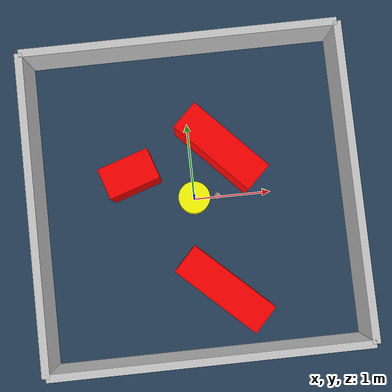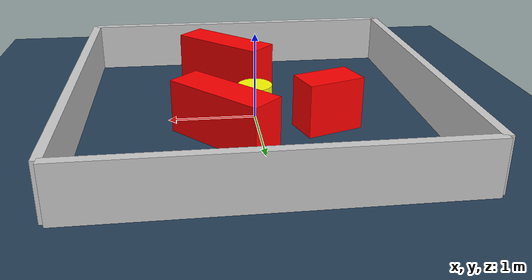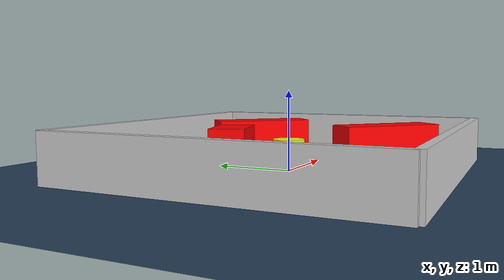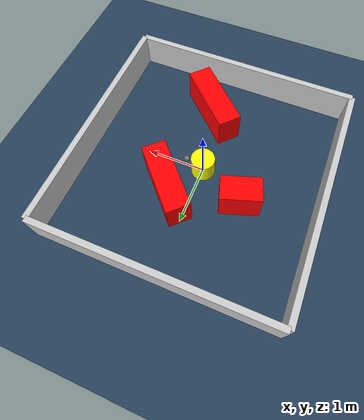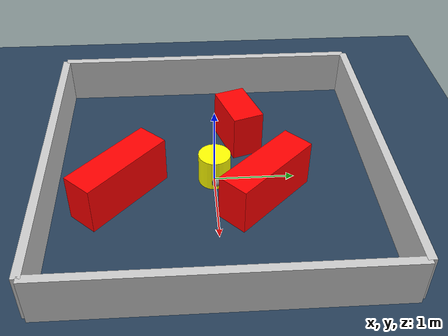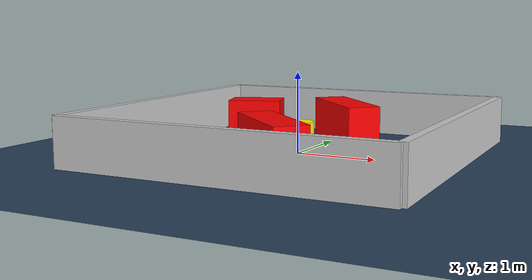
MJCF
<?xml version="1.0" ?>
<mujoco model="generated_environment">
  <option timestep="0.01" integrator="RK4" cone="elliptic"/>
  <default>
    <geom density="1"/>
  </default>
  <asset>
    <texture builtin="gradient" height="3072" rgb1="0.3 0.5 0.7" rgb2="0 0 0" type="skybox" width="512"/>
    <texture builtin="checker" height="300" mark="edge" markrgb="0.8 0.8 0.8" name="groundplane" rgb1="0.2 0.3 0.4" rgb2="0.1 0.2 0.3" type="2d" width="300"/>
    <material name="groundplane" reflectance="0.2" texrepeat="5 5" texture="groundplane" texuniform="true"/>
    <material name="robot" rgba="0.0 1.0 0.0 1"/>
  </asset>
  <worldbody>
    <light dir="0 0 -1" directional="true" pos="0 0 1.5"/>
    <geom condim="4" friction="1.0 0.005 0.001" material="groundplane" name="floor" size="0 0 0.05" type="plane"/>
    <body name="walls">
      <geom name="wall_1" condim="4" pos="-2.0 0.0 0.3" rgba="0.800000011920929 0.800000011920929 0.800000011920929 1.0" size="0.05 2.0 0.3" type="box"/>
      <geom name="wall_2" condim="4" pos="2.0 0.0 0.3" rgba="0.800000011920929 0.800000011920929 0.800000011920929 1.0" size="0.05 2.0 0.3" type="box"/>
      <geom name="wall_3" condim="4" pos="0.0 -2.0 0.3" rgba="0.800000011920929 0.800000011920929 0.800000011920929 1.0" size="2.0 0.05 0.3" type="box"/>
      <geom name="wall_4" condim="4" pos="0.0 2.0 0.3" rgba="0.800000011920929 0.800000011920929 0.800000011920929 1.0" size="2.0 0.05 0.3" type="box"/>
    </body>
    <body name="robot">
      <joint name="joint_x" type="slide" pos="0 0 0" axis="1 0 0"/>
      <joint name="joint_y" type="slide" pos="0 0 0" axis="0 1 0"/>
      <geom name="robot" type="sphere" pos="0.3 0.0 0.2" size="0.05" mass="5." friction="1.0 0.005 0.0001" condim="4" rgba="0.5 0.5 0.5 1.0"/>
      <site name="sensor_ball"/>
    </body>
    <body name="obstacle_movable_1">
      <geom name="obstacle_movable_1" condim="4" pos="0.0 0.0 0.2" euler="0 0 0.0" friction="1.0 0.005 0.001" rgba="1.0 1.0 0.0 1.0" size="0.2 0.2 0.0" type="cylinder" mass="0.1"/>
      <joint type="free"/>
    </body>
    <body name="obstacle_2_static">
      <geom name="obstacle_2_static" condim="4" pos="0.3941135678129337 0.5833328549751606 0.3" euler="0 0 133.6625765293051" friction="1.0 0.005 0.001" rgba="1 0 0 1" size="0.6034130023313278 0.2 0.3" type="box"/>
    </body>
    <body name="obstacle_3_static">
      <geom name="obstacle_3_static" condim="4" pos="0.25581452633207546 -1.163489314691994 0.3" euler="0 0 316.97120419905247" friction="1.0 0.005 0.001" rgba="1 0 0 1" size="0.6153276843860798 0.2 0.3" type="box"/>
    </body>
    <body name="obstacle_4_static">
      <geom name="obstacle_4_static" condim="4" pos="-0.7744991116517932 0.35987555233526947 0.3" euler="0 0 198.24639016582918" friction="1.0 0.005 0.001" rgba="1 0 0 1" size="0.33126510333992104 0.2 0.3" type="box"/>
    </body>
  </worldbody>
  <actuator>
    <motor name="actuator_x" joint="joint_x" gear="1" ctrlrange="-1 1"/>
    <motor name="actuator_y" joint="joint_y" gear="1" ctrlrange="-1 1"/>
  </actuator>
</mujoco>
